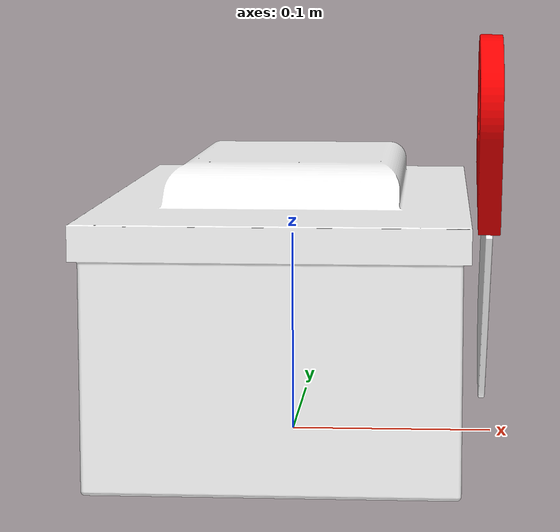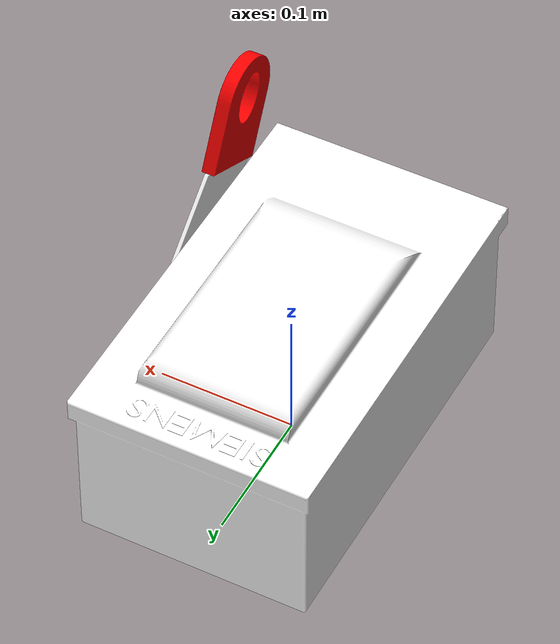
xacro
<?xml version="1.0"?>
<!-- Actuated HNF361 Safety Switch -->
<robot name="HNF361_safety_switch" xmlns:xacro="http://www.ros.org/wiki/xacro">

    <xacro:macro name="HNF361_safety_switch">

        <!-- Dimensions for Inertias -->
        <!-- Base -->
        <xacro:property name="width1" value="0.2"/>
        <xacro:property name="height1" value="0.2"/>
        <xacro:property name="mass1" value="2.0"/>

        <!-- Lever -->
        <xacro:property name="length2" value="0.03"/>
        <xacro:property name="radius2" value="0.1"/>
        <xacro:property name="mass2" value="0.4"/>

        <!-- Import all Gazebo-customization elements -->
        <xacro:include filename="$(find manipulation_playground_articulated_devices)/devices/HNF361_safety_switch/model/HNF361_safety_switch.gazebo" />

        <!-- Used to fix device to world -->
        <link name="world"/>

        <joint name="switch_base_to_world" type="fixed">
            <parent link="world"/>
            <child link="base"/>
            <origin xyz="0 0 0" rpy="0 0 0"/>
        </joint>

        <!-- Switch Base -->
        <link name="base">
            <collision>
                <origin xyz="0 0 0" rpy="-1.5708 0 0"/>
                <geometry>
                    <mesh filename="package://manipulation_playground_articulated_devices/devices/HNF361_safety_switch/model/HNF361_safety_switch_base.dae"/>
                </geometry>
            </collision>

            <visual>
                <origin xyz="0 0 0" rpy="-1.5708 0 0"/>
                <geometry>
                    <mesh filename="package://manipulation_playground_articulated_devices/devices/HNF361_safety_switch/model/HNF361_safety_switch_base.dae"/>
                </geometry>
            </visual>

            <inertial>
                <origin xyz="0 0 ${height1/2}" rpy="-1.5708 0 0"/>
                <mass value="${mass1}"/>
                <inertia
                    ixx="${mass1 / 12.0 * (width1*width1 + height1*height1)}" ixy="0.0" ixz="0.0"
                    iyy="${mass1 / 12.0 * (height1*height1 + width1*width1)}" iyz="0.0"
                    izz="${mass1 / 12.0 * (width1*width1 + width1*width1)}"/>
            </inertial>
        </link>

        <!-- Switch Joint -->
        <joint name="switch_joint" type="revolute">
            <parent link="base"/>
            <child link="lever"/>
            <origin xyz="0 0.011 0.045" rpy="0 0 0"/>
            <axis xyz="1 0 0"/>
            <dynamics damping="0.0" friction="0.01" />
            <limit effort="100" lower="-1.5707" upper="0" velocity="0.5" />
        </joint>

        <transmission name="switch_trans">
            <type>transmission_interface/SimpleTransmission</type>
            <joint name="switch_joint">
                <hardwareInterface>hardware_interface/EffortJointInterface</hardwareInterface>
            </joint>
            <actuator name="switch_actuator">
                <hardwareInterface>hardware_interface/EffortJointInterface</hardwareInterface>
                <mechanicalReduction>1</mechanicalReduction>
            </actuator>
        </transmission>

        <!-- Switch Lever -->
        <link name="lever">
            <collision>
                <origin xyz="0 -0.011 -0.045" rpy="-1.5708 0 0"/>
                <geometry>
                    <mesh filename="package://manipulation_playground_articulated_devices/devices/HNF361_safety_switch/model/HNF361_safety_switch_lever.dae"/>
                </geometry>
            </collision>

            <visual>
                <origin xyz="0 -0.011 -0.045" rpy="-1.5708 0 0"/>
                <geometry>
                    <mesh filename="package://manipulation_playground_articulated_devices/devices/HNF361_safety_switch/model/HNF361_safety_switch_lever.dae"/>
                </geometry>
            </visual>

            <inertial>
                <origin xyz="0 0 0" rpy="-1.5708 0 0"/>
                <mass value="${mass2}"/>
                <inertia
                    ixx="${mass2 / 2.0 * (radius2*radius2)}" ixy="0.0" ixz="0.0"
                    iyy="${mass2 / 12.0 * (3.0*radius2*radius2 + length2*length2)}" iyz="0.0"
                    izz="${mass2 / 12.0 * (3.0*radius2*radius2 + length2*length2)}"/>
            </inertial>
        </link>
    </xacro:macro>

    <xacro:HNF361_safety_switch/>
</robot>
